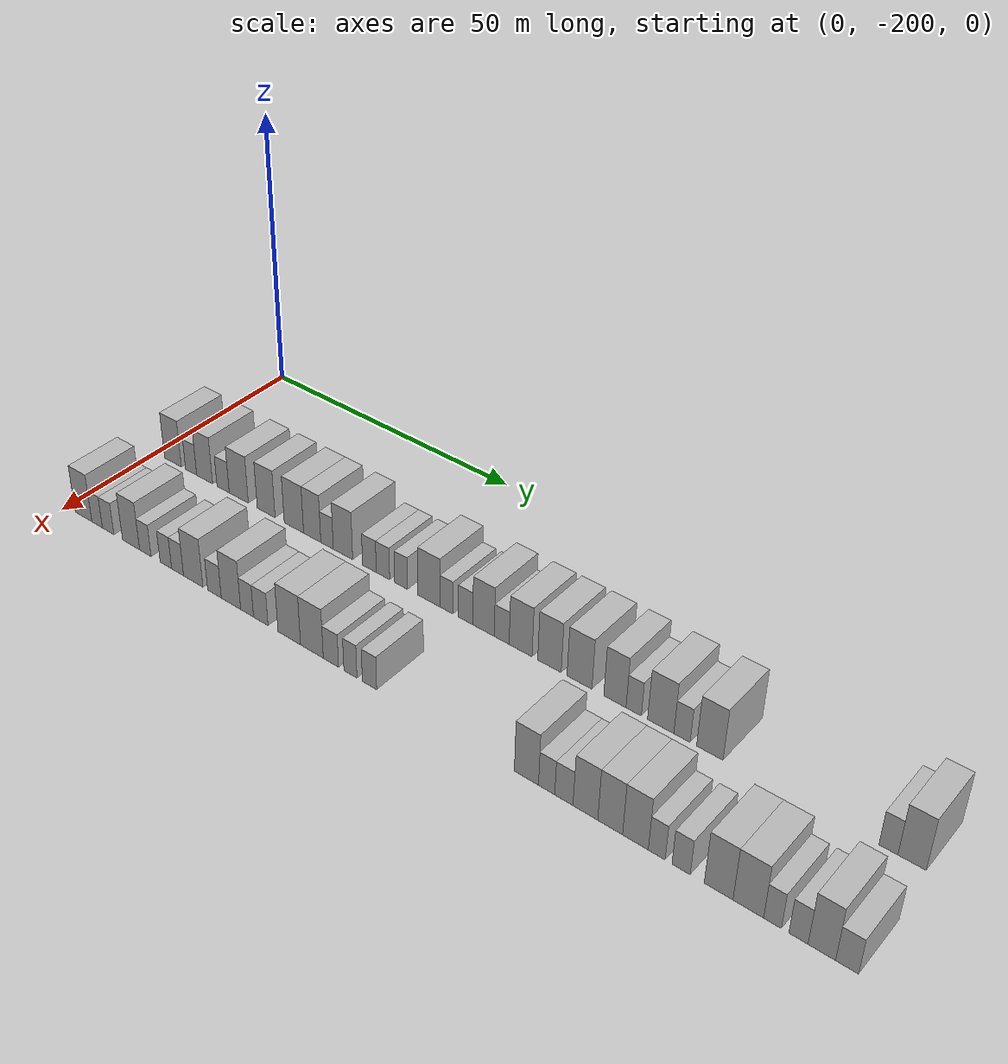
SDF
<sdf version="1.6">
 <world name="default">
  <model name="building_1">
   <static>1</static>
   <pose>25.0000 -196.0010 0 0.000000 0.000000 0.000000</pose>
   <link name="link">
    <pose>0 0 4.50 0 0 0</pose>
    <collision name="collision"><geometry><box><size>10.0000 3.9981 9.0000</size></box></geometry></collision>
    <visual name="visual">
     <cast_shadows>0</cast_shadows>
     <geometry><box><size>10.0000 3.9981 9.0000</size></box></geometry>
     <material>
      <script>
       <uri>model://HANNAS_wall/materials/scripts</uri>
       <uri>model://HANNAS_wall/materials/textures</uri>
       <name>vrc/HANNAS_wall</name>
      </script>
     </material>
    </visual>
   </link>
  </model>
  <model name="building_2">
   <static>1</static>
   <pose>25.0000 -191.7046 0 0.000000 0.000000 0.000000</pose>
   <link name="link">
    <pose>0 0 3.00 0 0 0</pose>
    <collision name="collision"><geometry><box><size>10.0000 2.5947 6.0000</size></box></geometry></collision>
    <visual name="visual">
     <cast_shadows>0</cast_shadows>
     <geometry><box><size>10.0000 2.5947 6.0000</size></box></geometry>
     <material>
      <script>
       <uri>model://HANNAS_wall/materials/scripts</uri>
       <uri>model://HANNAS_wall/materials/textures</uri>
       <name>vrc/HANNAS_wall</name>
      </script>
     </material>
    </visual>
   </link>
  </model>
  <model name="building_3">
   <static>1</static>
   <pose>25.0000 -188.5552 0 0.000000 0.000000 0.000000</pose>
   <link name="link">
    <pose>0 0 4.50 0 0 0</pose>
    <collision name="collision"><geometry><box><size>10.0000 3.7041 9.0000</size></box></geometry></collision>
    <visual name="visual">
     <cast_shadows>0</cast_shadows>
     <geometry><box><size>10.0000 3.7041 9.0000</size></box></geometry>
     <material>
      <script>
       <uri>model://HANNAS_wall/materials/scripts</uri>
       <uri>model://HANNAS_wall/materials/textures</uri>
       <name>vrc/HANNAS_wall</name>
      </script>
     </material>
    </visual>
   </link>
  </model>
  <model name="building_4">
   <static>1</static>
   <pose>25.0000 -184.3103 0 0.000000 0.000000 0.000000</pose>
   <link name="link">
    <pose>0 0 3.00 0 0 0</pose>
    <collision name="collision"><geometry><box><size>10.0000 2.7857 6.0000</size></box></geometry></collision>
    <visual name="visual">
     <cast_shadows>0</cast_shadows>
     <geometry><box><size>10.0000 2.7857 6.0000</size></box></geometry>
     <material>
      <script>
       <uri>model://HANNAS_wall/materials/scripts</uri>
       <uri>model://HANNAS_wall/materials/textures</uri>
       <name>vrc/HANNAS_wall</name>
      </script>
     </material>
    </visual>
   </link>
  </model>
  <model name="building_5">
   <static>1</static>
   <pose>25.0000 -180.7664 0 0.000000 0.000000 0.000000</pose>
   <link name="link">
    <pose>0 0 4.50 0 0 0</pose>
    <collision name="collision"><geometry><box><size>10.0000 4.3021 9.0000</size></box></geometry></collision>
    <visual name="visual">
     <cast_shadows>0</cast_shadows>
     <geometry><box><size>10.0000 4.3021 9.0000</size></box></geometry>
     <material>
      <script>
       <uri>model://HANNAS_wall/materials/scripts</uri>
       <uri>model://HANNAS_wall/materials/textures</uri>
       <name>vrc/HANNAS_wall</name>
      </script>
     </material>
    </visual>
   </link>
  </model>
  <model name="building_6">
   <static>1</static>
   <pose>25.0000 -174.6644 0 0.000000 0.000000 0.000000</pose>
   <link name="link">
    <pose>0 0 4.50 0 0 0</pose>
    <collision name="collision"><geometry><box><size>10.0000 3.9019 9.0000</size></box></geometry></collision>
    <visual name="visual">
     <cast_shadows>0</cast_shadows>
     <geometry><box><size>10.0000 3.9019 9.0000</size></box></geometry>
     <material>
      <script>
       <uri>model://HANNAS_wall/materials/scripts</uri>
       <uri>model://HANNAS_wall/materials/textures</uri>
       <name>vrc/HANNAS_wall</name>
      </script>
     </material>
    </visual>
   </link>
  </model>
  <model name="building_7">
   <static>1</static>
   <pose>25.0000 -168.6367 0 0.000000 0.000000 0.000000</pose>
   <link name="link">
    <pose>0 0 4.50 0 0 0</pose>
    <collision name="collision"><geometry><box><size>10.0000 4.1534 9.0000</size></box></geometry></collision>
    <visual name="visual">
     <cast_shadows>0</cast_shadows>
     <geometry><box><size>10.0000 4.1534 9.0000</size></box></geometry>
     <material>
      <script>
       <uri>model://HANNAS_wall/materials/scripts</uri>
       <uri>model://HANNAS_wall/materials/textures</uri>
       <name>vrc/HANNAS_wall</name>
      </script>
     </material>
    </visual>
   </link>
  </model>
  <model name="building_8">
   <static>1</static>
   <pose>25.0000 -164.7444 0 0.000000 0.000000 0.000000</pose>
   <link name="link">
    <pose>0 0 4.50 0 0 0</pose>
    <collision name="collision"><geometry><box><size>10.0000 3.6313 9.0000</size></box></geometry></collision>
    <visual name="visual">
     <cast_shadows>0</cast_shadows>
     <geometry><box><size>10.0000 3.6313 9.0000</size></box></geometry>
     <material>
      <script>
       <uri>model://HANNAS_wall/materials/scripts</uri>
       <uri>model://HANNAS_wall/materials/textures</uri>
       <name>vrc/HANNAS_wall</name>
      </script>
     </material>
    </visual>
   </link>
  </model>
  <model name="building_9">
   <static>1</static>
   <pose>25.0000 -161.6257 0 0.000000 0.000000 0.000000</pose>
   <link name="link">
    <pose>0 0 3.00 0 0 0</pose>
    <collision name="collision"><geometry><box><size>10.0000 2.6060 6.0000</size></box></geometry></collision>
    <visual name="visual">
     <cast_shadows>0</cast_shadows>
     <geometry><box><size>10.0000 2.6060 6.0000</size></box></geometry>
     <material>
      <script>
       <uri>model://HANNAS_wall/materials/scripts</uri>
       <uri>model://HANNAS_wall/materials/textures</uri>
       <name>vrc/HANNAS_wall</name>
      </script>
     </material>
    </visual>
   </link>
  </model>
  <model name="building_10">
   <static>1</static>
   <pose>25.0000 -158.3308 0 0.000000 0.000000 0.000000</pose>
   <link name="link">
    <pose>0 0 4.50 0 0 0</pose>
    <collision name="collision"><geometry><box><size>10.0000 3.9839 9.0000</size></box></geometry></collision>
    <visual name="visual">
     <cast_shadows>0</cast_shadows>
     <geometry><box><size>10.0000 3.9839 9.0000</size></box></geometry>
     <material>
      <script>
       <uri>model://HANNAS_wall/materials/scripts</uri>
       <uri>model://HANNAS_wall/materials/textures</uri>
       <name>vrc/HANNAS_wall</name>
      </script>
     </material>
    </visual>
   </link>
  </model>
  <model name="building_11">
   <static>1</static>
   <pose>25.0000 -152.9566 0 0.000000 0.000000 0.000000</pose>
   <link name="link">
    <pose>0 0 3.00 0 0 0</pose>
    <collision name="collision"><geometry><box><size>10.0000 2.7644 6.0000</size></box></geometry></collision>
    <visual name="visual">
     <cast_shadows>0</cast_shadows>
     <geometry><box><size>10.0000 2.7644 6.0000</size></box></geometry>
     <material>
      <script>
       <uri>model://HANNAS_wall/materials/scripts</uri>
       <uri>model://HANNAS_wall/materials/textures</uri>
       <name>vrc/HANNAS_wall</name>
      </script>
     </material>
    </visual>
   </link>
  </model>
  <model name="building_12">
   <static>1</static>
   <pose>25.0000 -150.2412 0 0.000000 0.000000 0.000000</pose>
   <link name="link">
    <pose>0 0 3.00 0 0 0</pose>
    <collision name="collision"><geometry><box><size>10.0000 2.6664 6.0000</size></box></geometry></collision>
    <visual name="visual">
     <cast_shadows>0</cast_shadows>
     <geometry><box><size>10.0000 2.6664 6.0000</size></box></geometry>
     <material>
      <script>
       <uri>model://HANNAS_wall/materials/scripts</uri>
       <uri>model://HANNAS_wall/materials/textures</uri>
       <name>vrc/HANNAS_wall</name>
      </script>
     </material>
    </visual>
   </link>
  </model>
  <model name="building_13">
   <static>1</static>
   <pose>25.0000 -146.6483 0 0.000000 0.000000 0.000000</pose>
   <link name="link">
    <pose>0 0 3.00 0 0 0</pose>
    <collision name="collision"><geometry><box><size>10.0000 2.5195 6.0000</size></box></geometry></collision>
    <visual name="visual">
     <cast_shadows>0</cast_shadows>
     <geometry><box><size>10.0000 2.5195 6.0000</size></box></geometry>
     <material>
      <script>
       <uri>model://HANNAS_wall/materials/scripts</uri>
       <uri>model://HANNAS_wall/materials/textures</uri>
       <name>vrc/HANNAS_wall</name>
      </script>
     </material>
    </visual>
   </link>
  </model>
  <model name="building_14">
   <static>1</static>
   <pose>25.0000 -141.2644 0 0.000000 0.000000 0.000000</pose>
   <link name="link">
    <pose>0 0 4.50 0 0 0</pose>
    <collision name="collision"><geometry><box><size>10.0000 4.2483 9.0000</size></box></geometry></collision>
    <visual name="visual">
     <cast_shadows>0</cast_shadows>
     <geometry><box><size>10.0000 4.2483 9.0000</size></box></geometry>
     <material>
      <script>
       <uri>model://HANNAS_wall/materials/scripts</uri>
       <uri>model://HANNAS_wall/materials/textures</uri>
       <name>vrc/HANNAS_wall</name>
      </script>
     </material>
    </visual>
   </link>
  </model>
  <model name="building_15">
   <static>1</static>
   <pose>25.0000 -137.9141 0 0.000000 0.000000 0.000000</pose>
   <link name="link">
    <pose>0 0 3.00 0 0 0</pose>
    <collision name="collision"><geometry><box><size>10.0000 2.4524 6.0000</size></box></geometry></collision>
    <visual name="visual">
     <cast_shadows>0</cast_shadows>
     <geometry><box><size>10.0000 2.4524 6.0000</size></box></geometry>
     <material>
      <script>
       <uri>model://HANNAS_wall/materials/scripts</uri>
       <uri>model://HANNAS_wall/materials/textures</uri>
       <name>vrc/HANNAS_wall</name>
      </script>
     </material>
    </visual>
   </link>
  </model>
  <model name="building_16">
   <static>1</static>
   <pose>25.0000 -134.3495 0 0.000000 0.000000 0.000000</pose>
   <link name="link">
    <pose>0 0 3.00 0 0 0</pose>
    <collision name="collision"><geometry><box><size>10.0000 2.6767 6.0000</size></box></geometry></collision>
    <visual name="visual">
     <cast_shadows>0</cast_shadows>
     <geometry><box><size>10.0000 2.6767 6.0000</size></box></geometry>
     <material>
      <script>
       <uri>model://HANNAS_wall/materials/scripts</uri>
       <uri>model://HANNAS_wall/materials/textures</uri>
       <name>vrc/HANNAS_wall</name>
      </script>
     </material>
    </visual>
   </link>
  </model>
  <model name="building_17">
   <static>1</static>
   <pose>25.0000 -131.0443 0 0.000000 0.000000 0.000000</pose>
   <link name="link">
    <pose>0 0 4.50 0 0 0</pose>
    <collision name="collision"><geometry><box><size>10.0000 3.9338 9.0000</size></box></geometry></collision>
    <visual name="visual">
     <cast_shadows>0</cast_shadows>
     <geometry><box><size>10.0000 3.9338 9.0000</size></box></geometry>
     <material>
      <script>
       <uri>model://HANNAS_wall/materials/scripts</uri>
       <uri>model://HANNAS_wall/materials/textures</uri>
       <name>vrc/HANNAS_wall</name>
      </script>
     </material>
    </visual>
   </link>
  </model>
  <model name="building_18">
   <static>1</static>
   <pose>25.0000 -127.7268 0 0.000000 0.000000 0.000000</pose>
   <link name="link">
    <pose>0 0 3.00 0 0 0</pose>
    <collision name="collision"><geometry><box><size>10.0000 2.7011 6.0000</size></box></geometry></collision>
    <visual name="visual">
     <cast_shadows>0</cast_shadows>
     <geometry><box><size>10.0000 2.7011 6.0000</size></box></geometry>
     <material>
      <script>
       <uri>model://HANNAS_wall/materials/scripts</uri>
       <uri>model://HANNAS_wall/materials/textures</uri>
       <name>vrc/HANNAS_wall</name>
      </script>
     </material>
    </visual>
   </link>
  </model>
  <model name="building_19">
   <static>1</static>
   <pose>25.0000 -124.3317 0 0.000000 0.000000 0.000000</pose>
   <link name="link">
    <pose>0 0 4.50 0 0 0</pose>
    <collision name="collision"><geometry><box><size>10.0000 4.0892 9.0000</size></box></geometry></collision>
    <visual name="visual">
     <cast_shadows>0</cast_shadows>
     <geometry><box><size>10.0000 4.0892 9.0000</size></box></geometry>
     <material>
      <script>
       <uri>model://HANNAS_wall/materials/scripts</uri>
       <uri>model://HANNAS_wall/materials/textures</uri>
       <name>vrc/HANNAS_wall</name>
      </script>
     </material>
    </visual>
   </link>
  </model>
  <model name="building_20">
   <static>1</static>
   <pose>25.0000 -119.2426 0 0.000000 0.000000 0.000000</pose>
   <link name="link">
    <pose>0 0 4.50 0 0 0</pose>
    <collision name="collision"><geometry><box><size>10.0000 4.0890 9.0000</size></box></geometry></collision>
    <visual name="visual">
     <cast_shadows>0</cast_shadows>
     <geometry><box><size>10.0000 4.0890 9.0000</size></box></geometry>
     <material>
      <script>
       <uri>model://HANNAS_wall/materials/scripts</uri>
       <uri>model://HANNAS_wall/materials/textures</uri>
       <name>vrc/HANNAS_wall</name>
      </script>
     </material>
    </visual>
   </link>
  </model>
  <model name="building_21">
   <static>1</static>
   <pose>25.0000 -114.0799 0 0.000000 0.000000 0.000000</pose>
   <link name="link">
    <pose>0 0 4.50 0 0 0</pose>
    <collision name="collision"><geometry><box><size>10.0000 4.2363 9.0000</size></box></geometry></collision>
    <visual name="visual">
     <cast_shadows>0</cast_shadows>
     <geometry><box><size>10.0000 4.2363 9.0000</size></box></geometry>
     <material>
      <script>
       <uri>model://HANNAS_wall/materials/scripts</uri>
       <uri>model://HANNAS_wall/materials/textures</uri>
       <name>vrc/HANNAS_wall</name>
      </script>
     </material>
    </visual>
   </link>
  </model>
  <model name="building_22">
   <static>1</static>
   <pose>25.0000 -108.1182 0 0.000000 0.000000 0.000000</pose>
   <link name="link">
    <pose>0 0 4.50 0 0 0</pose>
    <collision name="collision"><geometry><box><size>10.0000 3.6871 9.0000</size></box></geometry></collision>
    <visual name="visual">
     <cast_shadows>0</cast_shadows>
     <geometry><box><size>10.0000 3.6871 9.0000</size></box></geometry>
     <material>
      <script>
       <uri>model://HANNAS_wall/materials/scripts</uri>
       <uri>model://HANNAS_wall/materials/textures</uri>
       <name>vrc/HANNAS_wall</name>
      </script>
     </material>
    </visual>
   </link>
  </model>
  <model name="building_23">
   <static>1</static>
   <pose>25.0000 -105.0206 0 0.000000 0.000000 0.000000</pose>
   <link name="link">
    <pose>0 0 3.00 0 0 0</pose>
    <collision name="collision"><geometry><box><size>10.0000 2.5081 6.0000</size></box></geometry></collision>
    <visual name="visual">
     <cast_shadows>0</cast_shadows>
     <geometry><box><size>10.0000 2.5081 6.0000</size></box></geometry>
     <material>
      <script>
       <uri>model://HANNAS_wall/materials/scripts</uri>
       <uri>model://HANNAS_wall/materials/textures</uri>
       <name>vrc/HANNAS_wall</name>
      </script>
     </material>
    </visual>
   </link>
  </model>
  <model name="building_24">
   <static>1</static>
   <pose>25.0000 -100.6640 0 0.000000 0.000000 0.000000</pose>
   <link name="link">
    <pose>0 0 4.50 0 0 0</pose>
    <collision name="collision"><geometry><box><size>10.0000 4.2052 9.0000</size></box></geometry></collision>
    <visual name="visual">
     <cast_shadows>0</cast_shadows>
     <geometry><box><size>10.0000 4.2052 9.0000</size></box></geometry>
     <material>
      <script>
       <uri>model://HANNAS_wall/materials/scripts</uri>
       <uri>model://HANNAS_wall/materials/textures</uri>
       <name>vrc/HANNAS_wall</name>
      </script>
     </material>
    </visual>
   </link>
  </model>
  <model name="building_25">
   <static>1</static>
   <pose>25.0000 -97.2707 0 0.000000 0.000000 0.000000</pose>
   <link name="link">
    <pose>0 0 3.00 0 0 0</pose>
    <collision name="collision"><geometry><box><size>10.0000 2.5814 6.0000</size></box></geometry></collision>
    <visual name="visual">
     <cast_shadows>0</cast_shadows>
     <geometry><box><size>10.0000 2.5814 6.0000</size></box></geometry>
     <material>
      <script>
       <uri>model://HANNAS_wall/materials/scripts</uri>
       <uri>model://HANNAS_wall/materials/textures</uri>
       <name>vrc/HANNAS_wall</name>
      </script>
     </material>
    </visual>
   </link>
  </model>
  <model name="building_26">
   <static>1</static>
   <pose>25.0000 -92.9338 0 0.000000 0.000000 0.000000</pose>
   <link name="link">
    <pose>0 0 4.50 0 0 0</pose>
    <collision name="collision"><geometry><box><size>10.0000 4.0925 9.0000</size></box></geometry></collision>
    <visual name="visual">
     <cast_shadows>0</cast_shadows>
     <geometry><box><size>10.0000 4.0925 9.0000</size></box></geometry>
     <material>
      <script>
       <uri>model://HANNAS_wall/materials/scripts</uri>
       <uri>model://HANNAS_wall/materials/textures</uri>
       <name>vrc/HANNAS_wall</name>
      </script>
     </material>
    </visual>
   </link>
  </model>
  <model name="building_27">
   <static>1</static>
   <pose>25.0000 -67.0215 0 0.000000 0.000000 0.000000</pose>
   <link name="link">
    <pose>0 0 3.00 0 0 0</pose>
    <collision name="collision"><geometry><box><size>10.0000 2.5773 6.0000</size></box></geometry></collision>
    <visual name="visual">
     <cast_shadows>0</cast_shadows>
     <geometry><box><size>10.0000 2.5773 6.0000</size></box></geometry>
     <material>
      <script>
       <uri>model://HANNAS_wall/materials/scripts</uri>
       <uri>model://HANNAS_wall/materials/textures</uri>
       <name>vrc/HANNAS_wall</name>
      </script>
     </material>
    </visual>
   </link>
  </model>
  <model name="building_28">
   <static>1</static>
   <pose>25.0000 -63.8202 0 0.000000 0.000000 0.000000</pose>
   <link name="link">
    <pose>0 0 4.50 0 0 0</pose>
    <collision name="collision"><geometry><box><size>10.0000 3.8253 9.0000</size></box></geometry></collision>
    <visual name="visual">
     <cast_shadows>0</cast_shadows>
     <geometry><box><size>10.0000 3.8253 9.0000</size></box></geometry>
     <material>
      <script>
       <uri>model://HANNAS_wall/materials/scripts</uri>
       <uri>model://HANNAS_wall/materials/textures</uri>
       <name>vrc/HANNAS_wall</name>
      </script>
     </material>
    </visual>
   </link>
  </model>
  <model name="building_91">
   <static>1</static>
   <pose>44.0000 -196.0298 0 0.000000 0.000000 0.000000</pose>
   <link name="link">
    <pose>0 0 4.50 0 0 0</pose>
    <collision name="collision"><geometry><box><size>10.0000 3.9403 9.0000</size></box></geometry></collision>
    <visual name="visual">
     <cast_shadows>0</cast_shadows>
     <geometry><box><size>10.0000 3.9403 9.0000</size></box></geometry>
     <material>
      <script>
       <uri>model://HANNAS_wall/materials/scripts</uri>
       <uri>model://HANNAS_wall/materials/textures</uri>
       <name>vrc/HANNAS_wall</name>
      </script>
     </material>
    </visual>
   </link>
  </model>
  <model name="building_92">
   <static>1</static>
   <pose>44.0000 -192.8237 0 0.000000 0.000000 0.000000</pose>
   <link name="link">
    <pose>0 0 3.00 0 0 0</pose>
    <collision name="collision"><geometry><box><size>10.0000 2.4721 6.0000</size></box></geometry></collision>
    <visual name="visual">
     <cast_shadows>0</cast_shadows>
     <geometry><box><size>10.0000 2.4721 6.0000</size></box></geometry>
     <material>
      <script>
       <uri>model://HANNAS_wall/materials/scripts</uri>
       <uri>model://HANNAS_wall/materials/textures</uri>
       <name>vrc/HANNAS_wall</name>
      </script>
     </material>
    </visual>
   </link>
  </model>
  <model name="building_93">
   <static>1</static>
   <pose>44.0000 -190.2507 0 0.000000 0.000000 0.000000</pose>
   <link name="link">
    <pose>0 0 3.00 0 0 0</pose>
    <collision name="collision"><geometry><box><size>10.0000 2.6737 6.0000</size></box></geometry></collision>
    <visual name="visual">
     <cast_shadows>0</cast_shadows>
     <geometry><box><size>10.0000 2.6737 6.0000</size></box></geometry>
     <material>
      <script>
       <uri>model://HANNAS_wall/materials/scripts</uri>
       <uri>model://HANNAS_wall/materials/textures</uri>
       <name>vrc/HANNAS_wall</name>
      </script>
     </material>
    </visual>
   </link>
  </model>
  <model name="building_94">
   <static>1</static>
   <pose>44.0000 -184.9721 0 0.000000 0.000000 0.000000</pose>
   <link name="link">
    <pose>0 0 4.50 0 0 0</pose>
    <collision name="collision"><geometry><box><size>10.0000 3.8835 9.0000</size></box></geometry></collision>
    <visual name="visual">
     <cast_shadows>0</cast_shadows>
     <geometry><box><size>10.0000 3.8835 9.0000</size></box></geometry>
     <material>
      <script>
       <uri>model://HANNAS_wall/materials/scripts</uri>
       <uri>model://HANNAS_wall/materials/textures</uri>
       <name>vrc/HANNAS_wall</name>
      </script>
     </material>
    </visual>
   </link>
  </model>
  <model name="building_95">
   <static>1</static>
   <pose>44.0000 -181.7383 0 0.000000 0.000000 0.000000</pose>
   <link name="link">
    <pose>0 0 3.00 0 0 0</pose>
    <collision name="collision"><geometry><box><size>10.0000 2.5841 6.0000</size></box></geometry></collision>
    <visual name="visual">
     <cast_shadows>0</cast_shadows>
     <geometry><box><size>10.0000 2.5841 6.0000</size></box></geometry>
     <material>
      <script>
       <uri>model://HANNAS_wall/materials/scripts</uri>
       <uri>model://HANNAS_wall/materials/textures</uri>
       <name>vrc/HANNAS_wall</name>
      </script>
     </material>
    </visual>
   </link>
  </model>
  <model name="building_96">
   <static>1</static>
   <pose>44.0000 -177.1729 0 0.000000 0.000000 0.000000</pose>
   <link name="link">
    <pose>0 0 3.00 0 0 0</pose>
    <collision name="collision"><geometry><box><size>10.0000 2.5468 6.0000</size></box></geometry></collision>
    <visual name="visual">
     <cast_shadows>0</cast_shadows>
     <geometry><box><size>10.0000 2.5468 6.0000</size></box></geometry>
     <material>
      <script>
       <uri>model://HANNAS_wall/materials/scripts</uri>
       <uri>model://HANNAS_wall/materials/textures</uri>
       <name>vrc/HANNAS_wall</name>
      </script>
     </material>
    </visual>
   </link>
  </model>
  <model name="building_97">
   <static>1</static>
   <pose>44.0000 -174.6033 0 0.000000 0.000000 0.000000</pose>
   <link name="link">
    <pose>0 0 3.00 0 0 0</pose>
    <collision name="collision"><geometry><box><size>10.0000 2.5924 6.0000</size></box></geometry></collision>
    <visual name="visual">
     <cast_shadows>0</cast_shadows>
     <geometry><box><size>10.0000 2.5924 6.0000</size></box></geometry>
     <material>
      <script>
       <uri>model://HANNAS_wall/materials/scripts</uri>
       <uri>model://HANNAS_wall/materials/textures</uri>
       <name>vrc/HANNAS_wall</name>
      </script>
     </material>
    </visual>
   </link>
  </model>
  <model name="building_98">
   <static>1</static>
   <pose>44.0000 -171.2233 0 0.000000 0.000000 0.000000</pose>
   <link name="link">
    <pose>0 0 4.50 0 0 0</pose>
    <collision name="collision"><geometry><box><size>10.0000 4.1675 9.0000</size></box></geometry></collision>
    <visual name="visual">
     <cast_shadows>0</cast_shadows>
     <geometry><box><size>10.0000 4.1675 9.0000</size></box></geometry>
     <material>
      <script>
       <uri>model://HANNAS_wall/materials/scripts</uri>
       <uri>model://HANNAS_wall/materials/textures</uri>
       <name>vrc/HANNAS_wall</name>
      </script>
     </material>
    </visual>
   </link>
  </model>
  <model name="building_99">
   <static>1</static>
   <pose>44.0000 -166.6965 0 0.000000 0.000000 0.000000</pose>
   <link name="link">
    <pose>0 0 3.00 0 0 0</pose>
    <collision name="collision"><geometry><box><size>10.0000 2.8861 6.0000</size></box></geometry></collision>
    <visual name="visual">
     <cast_shadows>0</cast_shadows>
     <geometry><box><size>10.0000 2.8861 6.0000</size></box></geometry>
     <material>
      <script>
       <uri>model://HANNAS_wall/materials/scripts</uri>
       <uri>model://HANNAS_wall/materials/textures</uri>
       <name>vrc/HANNAS_wall</name>
      </script>
     </material>
    </visual>
   </link>
  </model>
  <model name="building_100">
   <static>1</static>
   <pose>44.0000 -163.2376 0 0.000000 0.000000 0.000000</pose>
   <link name="link">
    <pose>0 0 4.50 0 0 0</pose>
    <collision name="collision"><geometry><box><size>10.0000 4.0318 9.0000</size></box></geometry></collision>
    <visual name="visual">
     <cast_shadows>0</cast_shadows>
     <geometry><box><size>10.0000 4.0318 9.0000</size></box></geometry>
     <material>
      <script>
       <uri>model://HANNAS_wall/materials/scripts</uri>
       <uri>model://HANNAS_wall/materials/textures</uri>
       <name>vrc/HANNAS_wall</name>
      </script>
     </material>
    </visual>
   </link>
  </model>
  <model name="building_101">
   <static>1</static>
   <pose>44.0000 -159.9047 0 0.000000 0.000000 0.000000</pose>
   <link name="link">
    <pose>0 0 3.00 0 0 0</pose>
    <collision name="collision"><geometry><box><size>10.0000 2.6339 6.0000</size></box></geometry></collision>
    <visual name="visual">
     <cast_shadows>0</cast_shadows>
     <geometry><box><size>10.0000 2.6339 6.0000</size></box></geometry>
     <material>
      <script>
       <uri>model://HANNAS_wall/materials/scripts</uri>
       <uri>model://HANNAS_wall/materials/textures</uri>
       <name>vrc/HANNAS_wall</name>
      </script>
     </material>
    </visual>
   </link>
  </model>
  <model name="building_102">
   <static>1</static>
   <pose>44.0000 -157.1192 0 0.000000 0.000000 0.000000</pose>
   <link name="link">
    <pose>0 0 3.00 0 0 0</pose>
    <collision name="collision"><geometry><box><size>10.0000 2.9371 6.0000</size></box></geometry></collision>
    <visual name="visual">
     <cast_shadows>0</cast_shadows>
     <geometry><box><size>10.0000 2.9371 6.0000</size></box></geometry>
     <material>
      <script>
       <uri>model://HANNAS_wall/materials/scripts</uri>
       <uri>model://HANNAS_wall/materials/textures</uri>
       <name>vrc/HANNAS_wall</name>
      </script>
     </material>
    </visual>
   </link>
  </model>
  <model name="building_103">
   <static>1</static>
   <pose>44.0000 -151.4214 0 0.000000 0.000000 0.000000</pose>
   <link name="link">
    <pose>0 0 4.50 0 0 0</pose>
    <collision name="collision"><geometry><box><size>10.0000 4.4586 9.0000</size></box></geometry></collision>
    <visual name="visual">
     <cast_shadows>0</cast_shadows>
     <geometry><box><size>10.0000 4.4586 9.0000</size></box></geometry>
     <material>
      <script>
       <uri>model://HANNAS_wall/materials/scripts</uri>
       <uri>model://HANNAS_wall/materials/textures</uri>
       <name>vrc/HANNAS_wall</name>
      </script>
     </material>
    </visual>
   </link>
  </model>
  <model name="building_104">
   <static>1</static>
   <pose>44.0000 -146.9886 0 0.000000 0.000000 0.000000</pose>
   <link name="link">
    <pose>0 0 4.50 0 0 0</pose>
    <collision name="collision"><geometry><box><size>10.0000 4.4069 9.0000</size></box></geometry></collision>
    <visual name="visual">
     <cast_shadows>0</cast_shadows>
     <geometry><box><size>10.0000 4.4069 9.0000</size></box></geometry>
     <material>
      <script>
       <uri>model://HANNAS_wall/materials/scripts</uri>
       <uri>model://HANNAS_wall/materials/textures</uri>
       <name>vrc/HANNAS_wall</name>
      </script>
     </material>
    </visual>
   </link>
  </model>
  <model name="building_105">
   <static>1</static>
   <pose>44.0000 -143.3251 0 0.000000 0.000000 0.000000</pose>
   <link name="link">
    <pose>0 0 3.00 0 0 0</pose>
    <collision name="collision"><geometry><box><size>10.0000 2.9200 6.0000</size></box></geometry></collision>
    <visual name="visual">
     <cast_shadows>0</cast_shadows>
     <geometry><box><size>10.0000 2.9200 6.0000</size></box></geometry>
     <material>
      <script>
       <uri>model://HANNAS_wall/materials/scripts</uri>
       <uri>model://HANNAS_wall/materials/textures</uri>
       <name>vrc/HANNAS_wall</name>
      </script>
     </material>
    </visual>
   </link>
  </model>
  <model name="building_106">
   <static>1</static>
   <pose>44.0000 -139.6385 0 0.000000 0.000000 0.000000</pose>
   <link name="link">
    <pose>0 0 3.00 0 0 0</pose>
    <collision name="collision"><geometry><box><size>10.0000 2.4532 6.0000</size></box></geometry></collision>
    <visual name="visual">
     <cast_shadows>0</cast_shadows>
     <geometry><box><size>10.0000 2.4532 6.0000</size></box></geometry>
     <material>
      <script>
       <uri>model://HANNAS_wall/materials/scripts</uri>
       <uri>model://HANNAS_wall/materials/textures</uri>
       <name>vrc/HANNAS_wall</name>
      </script>
     </material>
    </visual>
   </link>
  </model>
  <model name="building_107">
   <static>1</static>
   <pose>44.0000 -136.0889 0 0.000000 0.000000 0.000000</pose>
   <link name="link">
    <pose>0 0 3.00 0 0 0</pose>
    <collision name="collision"><geometry><box><size>10.0000 2.6461 6.0000</size></box></geometry></collision>
    <visual name="visual">
     <cast_shadows>0</cast_shadows>
     <geometry><box><size>10.0000 2.6461 6.0000</size></box></geometry>
     <material>
      <script>
       <uri>model://HANNAS_wall/materials/scripts</uri>
       <uri>model://HANNAS_wall/materials/textures</uri>
       <name>vrc/HANNAS_wall</name>
      </script>
     </material>
    </visual>
   </link>
  </model>
  <model name="building_108">
   <static>1</static>
   <pose>44.0000 -108.8822 0 0.000000 0.000000 0.000000</pose>
   <link name="link">
    <pose>0 0 4.50 0 0 0</pose>
    <collision name="collision"><geometry><box><size>10.0000 3.9224 9.0000</size></box></geometry></collision>
    <visual name="visual">
     <cast_shadows>0</cast_shadows>
     <geometry><box><size>10.0000 3.9224 9.0000</size></box></geometry>
     <material>
      <script>
       <uri>model://HANNAS_wall/materials/scripts</uri>
       <uri>model://HANNAS_wall/materials/textures</uri>
       <name>vrc/HANNAS_wall</name>
      </script>
     </material>
    </visual>
   </link>
  </model>
  <model name="building_109">
   <static>1</static>
   <pose>44.0000 -105.6196 0 0.000000 0.000000 0.000000</pose>
   <link name="link">
    <pose>0 0 3.00 0 0 0</pose>
    <collision name="collision"><geometry><box><size>10.0000 2.6028 6.0000</size></box></geometry></collision>
    <visual name="visual">
     <cast_shadows>0</cast_shadows>
     <geometry><box><size>10.0000 2.6028 6.0000</size></box></geometry>
     <material>
      <script>
       <uri>model://HANNAS_wall/materials/scripts</uri>
       <uri>model://HANNAS_wall/materials/textures</uri>
       <name>vrc/HANNAS_wall</name>
      </script>
     </material>
    </visual>
   </link>
  </model>
  <model name="building_110">
   <static>1</static>
   <pose>44.0000 -102.8756 0 0.000000 0.000000 0.000000</pose>
   <link name="link">
    <pose>0 0 3.00 0 0 0</pose>
    <collision name="collision"><geometry><box><size>10.0000 2.8852 6.0000</size></box></geometry></collision>
    <visual name="visual">
     <cast_shadows>0</cast_shadows>
     <geometry><box><size>10.0000 2.8852 6.0000</size></box></geometry>
     <material>
      <script>
       <uri>model://HANNAS_wall/materials/scripts</uri>
       <uri>model://HANNAS_wall/materials/textures</uri>
       <name>vrc/HANNAS_wall</name>
      </script>
     </material>
    </visual>
   </link>
  </model>
  <model name="building_111">
   <static>1</static>
   <pose>44.0000 -99.5029 0 0.000000 0.000000 0.000000</pose>
   <link name="link">
    <pose>0 0 4.50 0 0 0</pose>
    <collision name="collision"><geometry><box><size>10.0000 3.8602 9.0000</size></box></geometry></collision>
    <visual name="visual">
     <cast_shadows>0</cast_shadows>
     <geometry><box><size>10.0000 3.8602 9.0000</size></box></geometry>
     <material>
      <script>
       <uri>model://HANNAS_wall/materials/scripts</uri>
       <uri>model://HANNAS_wall/materials/textures</uri>
       <name>vrc/HANNAS_wall</name>
      </script>
     </material>
    </visual>
   </link>
  </model>
  <model name="building_112">
   <static>1</static>
   <pose>44.0000 -95.6800 0 0.000000 0.000000 0.000000</pose>
   <link name="link">
    <pose>0 0 4.50 0 0 0</pose>
    <collision name="collision"><geometry><box><size>10.0000 3.7855 9.0000</size></box></geometry></collision>
    <visual name="visual">
     <cast_shadows>0</cast_shadows>
     <geometry><box><size>10.0000 3.7855 9.0000</size></box></geometry>
     <material>
      <script>
       <uri>model://HANNAS_wall/materials/scripts</uri>
       <uri>model://HANNAS_wall/materials/textures</uri>
       <name>vrc/HANNAS_wall</name>
      </script>
     </material>
    </visual>
   </link>
  </model>
  <model name="building_113">
   <static>1</static>
   <pose>44.0000 -91.8609 0 0.000000 0.000000 0.000000</pose>
   <link name="link">
    <pose>0 0 4.50 0 0 0</pose>
    <collision name="collision"><geometry><box><size>10.0000 3.8528 9.0000</size></box></geometry></collision>
    <visual name="visual">
     <cast_shadows>0</cast_shadows>
     <geometry><box><size>10.0000 3.8528 9.0000</size></box></geometry>
     <material>
      <script>
       <uri>model://HANNAS_wall/materials/scripts</uri>
       <uri>model://HANNAS_wall/materials/textures</uri>
       <name>vrc/HANNAS_wall</name>
      </script>
     </material>
    </visual>
   </link>
  </model>
  <model name="building_114">
   <static>1</static>
   <pose>44.0000 -88.6934 0 0.000000 0.000000 0.000000</pose>
   <link name="link">
    <pose>0 0 3.00 0 0 0</pose>
    <collision name="collision"><geometry><box><size>10.0000 2.4821 6.0000</size></box></geometry></collision>
    <visual name="visual">
     <cast_shadows>0</cast_shadows>
     <geometry><box><size>10.0000 2.4821 6.0000</size></box></geometry>
     <material>
      <script>
       <uri>model://HANNAS_wall/materials/scripts</uri>
       <uri>model://HANNAS_wall/materials/textures</uri>
       <name>vrc/HANNAS_wall</name>
      </script>
     </material>
    </visual>
   </link>
  </model>
  <model name="building_115">
   <static>1</static>
   <pose>44.0000 -85.1300 0 0.000000 0.000000 0.000000</pose>
   <link name="link">
    <pose>0 0 3.00 0 0 0</pose>
    <collision name="collision"><geometry><box><size>10.0000 2.6448 6.0000</size></box></geometry></collision>
    <visual name="visual">
     <cast_shadows>0</cast_shadows>
     <geometry><box><size>10.0000 2.6448 6.0000</size></box></geometry>
     <material>
      <script>
       <uri>model://HANNAS_wall/materials/scripts</uri>
       <uri>model://HANNAS_wall/materials/textures</uri>
       <name>vrc/HANNAS_wall</name>
      </script>
     </material>
    </visual>
   </link>
  </model>
  <model name="building_116">
   <static>1</static>
   <pose>44.0000 -79.7820 0 0.000000 0.000000 0.000000</pose>
   <link name="link">
    <pose>0 0 4.50 0 0 0</pose>
    <collision name="collision"><geometry><box><size>10.0000 4.0511 9.0000</size></box></geometry></collision>
    <visual name="visual">
     <cast_shadows>0</cast_shadows>
     <geometry><box><size>10.0000 4.0511 9.0000</size></box></geometry>
     <material>
      <script>
       <uri>model://HANNAS_wall/materials/scripts</uri>
       <uri>model://HANNAS_wall/materials/textures</uri>
       <name>vrc/HANNAS_wall</name>
      </script>
     </material>
    </visual>
   </link>
  </model>
  <model name="building_117">
   <static>1</static>
   <pose>44.0000 -75.6464 0 0.000000 0.000000 0.000000</pose>
   <link name="link">
    <pose>0 0 4.50 0 0 0</pose>
    <collision name="collision"><geometry><box><size>10.0000 4.2203 9.0000</size></box></geometry></collision>
    <visual name="visual">
     <cast_shadows>0</cast_shadows>
     <geometry><box><size>10.0000 4.2203 9.0000</size></box></geometry>
     <material>
      <script>
       <uri>model://HANNAS_wall/materials/scripts</uri>
       <uri>model://HANNAS_wall/materials/textures</uri>
       <name>vrc/HANNAS_wall</name>
      </script>
     </material>
    </visual>
   </link>
  </model>
  <model name="building_118">
   <static>1</static>
   <pose>44.0000 -72.3250 0 0.000000 0.000000 0.000000</pose>
   <link name="link">
    <pose>0 0 3.00 0 0 0</pose>
    <collision name="collision"><geometry><box><size>10.0000 2.4225 6.0000</size></box></geometry></collision>
    <visual name="visual">
     <cast_shadows>0</cast_shadows>
     <geometry><box><size>10.0000 2.4225 6.0000</size></box></geometry>
     <material>
      <script>
       <uri>model://HANNAS_wall/materials/scripts</uri>
       <uri>model://HANNAS_wall/materials/textures</uri>
       <name>vrc/HANNAS_wall</name>
      </script>
     </material>
    </visual>
   </link>
  </model>
  <model name="building_119">
   <static>1</static>
   <pose>44.0000 -68.8385 0 0.000000 0.000000 0.000000</pose>
   <link name="link">
    <pose>0 0 3.00 0 0 0</pose>
    <collision name="collision"><geometry><box><size>10.0000 2.5506 6.0000</size></box></geometry></collision>
    <visual name="visual">
     <cast_shadows>0</cast_shadows>
     <geometry><box><size>10.0000 2.5506 6.0000</size></box></geometry>
     <material>
      <script>
       <uri>model://HANNAS_wall/materials/scripts</uri>
       <uri>model://HANNAS_wall/materials/textures</uri>
       <name>vrc/HANNAS_wall</name>
      </script>
     </material>
    </visual>
   </link>
  </model>
  <model name="building_120">
   <static>1</static>
   <pose>44.0000 -65.7579 0 0.000000 0.000000 0.000000</pose>
   <link name="link">
    <pose>0 0 4.50 0 0 0</pose>
    <collision name="collision"><geometry><box><size>10.0000 3.6104 9.0000</size></box></geometry></collision>
    <visual name="visual">
     <cast_shadows>0</cast_shadows>
     <geometry><box><size>10.0000 3.6104 9.0000</size></box></geometry>
     <material>
      <script>
       <uri>model://HANNAS_wall/materials/scripts</uri>
       <uri>model://HANNAS_wall/materials/textures</uri>
       <name>vrc/HANNAS_wall</name>
      </script>
     </material>
    </visual>
   </link>
  </model>
  <model name="building_121">
   <static>1</static>
   <pose>44.0000 -62.4701 0 0.000000 0.000000 0.000000</pose>
   <link name="link">
    <pose>0 0 3.00 0 0 0</pose>
    <collision name="collision"><geometry><box><size>10.0000 2.9652 6.0000</size></box></geometry></collision>
    <visual name="visual">
     <cast_shadows>0</cast_shadows>
     <geometry><box><size>10.0000 2.9652 6.0000</size></box></geometry>
     <material>
      <script>
       <uri>model://HANNAS_wall/materials/scripts</uri>
       <uri>model://HANNAS_wall/materials/textures</uri>
       <name>vrc/HANNAS_wall</name>
      </script>
     </material>
    </visual>
   </link>
  </model>
 </world>
</sdf>
